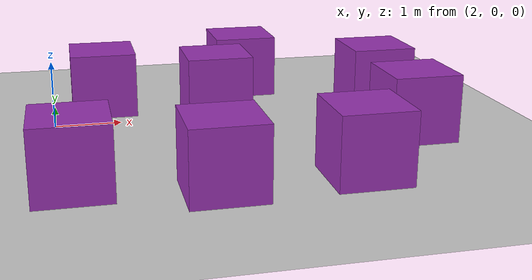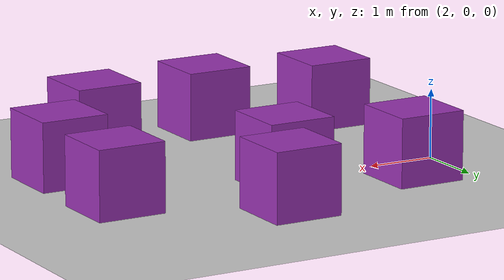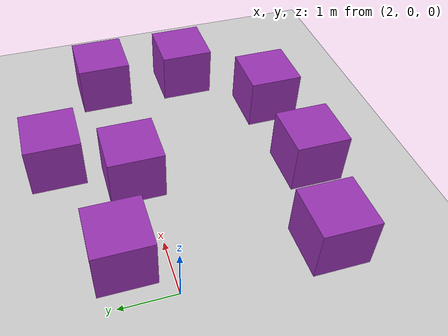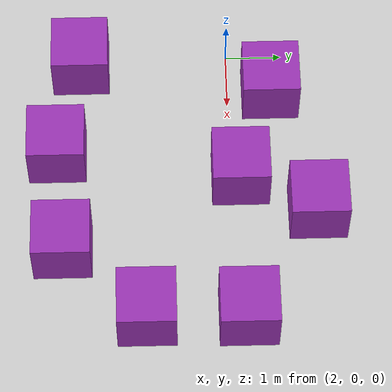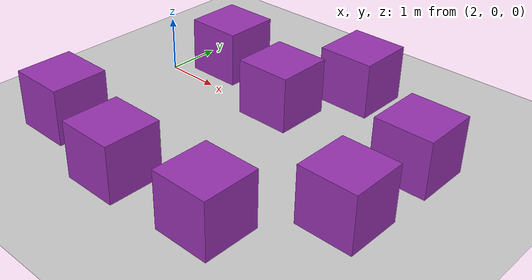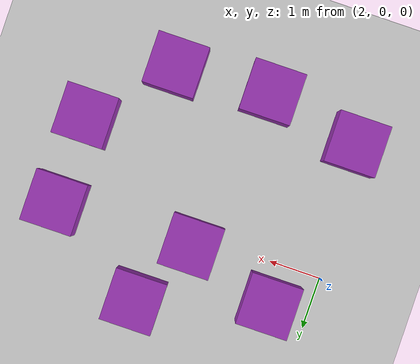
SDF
<sdf version="1.6">
 <world name="default">
  <light name="sun" type="directional">
   <pose>0 0 10 0 -0 0</pose>
   <diffuse>0.8 0.8 0.8 1</diffuse>
   <specular>0.1 0.1 0.1 1</specular>
   <attenuation>
    <range>1000</range>
    <constant>0.9</constant>
    <linear>0.01</linear>
    <quadratic>0.001</quadratic>
   </attenuation>
   <direction>-0.5 0.5 -1</direction>
  </light>
  <model name="ground_plane">
   <static>1</static>
   <link name="link">
    <collision name="collision">
     <geometry><plane><normal>0 0 1</normal><size>100 100</size></plane></geometry>
     <surface><friction><ode><mu>100</mu><mu2>50</mu2></ode></friction></surface>
    </collision>
    <visual name="visual">
     <cast_shadows>0</cast_shadows>
     <geometry><plane><normal>0 0 1</normal><size>100 100</size></plane></geometry>
     <material>
      <script><uri>file://media/materials/scripts/gazebo.material</uri><name>Gazebo/Grey</name></script>
     </material>
    </visual>
   </link>
  </model>
  <gravity>0 0 -9.8</gravity>
  <magnetic_field>6e-06 2.3e-05 -4.2e-05</magnetic_field>
  <atmosphere type="adiabatic"/>
  <physics name="default_physics" default="0" type="ode">
   <max_step_size>0.001</max_step_size>
   <real_time_factor>1</real_time_factor>
   <real_time_update_rate>1000</real_time_update_rate>
  </physics>
  <scene><ambient>0.4 0.4 0.4 1</ambient><background>0.7 0.7 0.7 1</background><shadows>1</shadows></scene>
  <spherical_coordinates>
   <surface_model>EARTH_WGS84</surface_model>
   <latitude_deg>0</latitude_deg>
   <longitude_deg>0</longitude_deg>
   <elevation>0</elevation>
   <heading_deg>0</heading_deg>
  </spherical_coordinates>
  <model name="unit_box_0">
   <pose>2.78087 0.763074 0.499995 -1e-05 0 0</pose>
   <link name="link">
    <inertial>
     <mass>1</mass>
     <inertia>
      <ixx>0.166667</ixx>
      <ixy>0</ixy>
      <ixz>0</ixz>
      <iyy>0.166667</iyy>
      <iyz>0</iyz>
      <izz>0.166667</izz>
     </inertia>
    </inertial>
    <collision name="collision"><geometry><box><size>1 1 1</size></box></geometry></collision>
    <visual name="visual">
     <geometry><box><size>1 1 1</size></box></geometry>
     <material>
      <script><name>Gazebo/Purple</name><uri>file://media/materials/scripts/gazebo.material</uri></script>
     </material>
    </visual>
   </link>
  </model>
  <model name="unit_box_1">
   <pose>2.20531 -2.617 0.499995 0 1e-05 0</pose>
   <link name="link">
    <inertial>
     <mass>1</mass>
     <inertia>
      <ixx>0.166667</ixx>
      <ixy>0</ixy>
      <ixz>0</ixz>
      <iyy>0.166667</iyy>
      <iyz>0</iyz>
      <izz>0.166667</izz>
     </inertia>
    </inertial>
    <collision name="collision"><geometry><box><size>1 1 1</size></box></geometry></collision>
    <visual name="visual">
     <geometry><box><size>1 1 1</size></box></geometry>
     <material>
      <script><name>Gazebo/Purple</name><uri>file://media/materials/scripts/gazebo.material</uri></script>
     </material>
    </visual>
   </link>
  </model>
  <model name="unit_box_2">
   <pose>4.00769 -3.02599 0.499995 -1e-05 0 0</pose>
   <link name="link">
    <inertial>
     <mass>1</mass>
     <inertia>
      <ixx>0.166667</ixx>
      <ixy>0</ixy>
      <ixz>0</ixz>
      <iyy>0.166667</iyy>
      <iyz>0</iyz>
      <izz>0.166667</izz>
     </inertia>
    </inertial>
    <collision name="collision"><geometry><box><size>1 1 1</size></box></geometry></collision>
    <visual name="visual">
     <geometry><box><size>1 1 1</size></box></geometry>
     <material>
      <script><name>Gazebo/Purple</name><uri>file://media/materials/scripts/gazebo.material</uri></script>
     </material>
    </visual>
   </link>
  </model>
  <model name="unit_box_3">
   <pose>4.51821 0.177146 0.499995 0 1e-05 0</pose>
   <link name="link">
    <inertial>
     <mass>1</mass>
     <inertia>
      <ixx>0.166667</ixx>
      <ixy>0</ixy>
      <ixz>0</ixz>
      <iyy>0.166667</iyy>
      <iyz>0</iyz>
      <izz>0.166667</izz>
     </inertia>
    </inertial>
    <collision name="collision"><geometry><box><size>1 1 1</size></box></geometry></collision>
    <visual name="visual">
     <geometry><box><size>1 1 1</size></box></geometry>
     <material>
      <script><name>Gazebo/Purple</name><uri>file://media/materials/scripts/gazebo.material</uri></script>
     </material>
    </visual>
   </link>
  </model>
  <model name="unit_box_4">
   <pose>5.87224 -2.92035 0.499995 -1e-05 0 0</pose>
   <link name="link">
    <inertial>
     <mass>1</mass>
     <inertia>
      <ixx>0.166667</ixx>
      <ixy>0</ixy>
      <ixz>0</ixz>
      <iyy>0.166667</iyy>
      <iyz>0</iyz>
      <izz>0.166667</izz>
     </inertia>
    </inertial>
    <collision name="collision"><geometry><box><size>1 1 1</size></box></geometry></collision>
    <visual name="visual">
     <geometry><box><size>1 1 1</size></box></geometry>
     <material>
      <script><name>Gazebo/Purple</name><uri>file://media/materials/scripts/gazebo.material</uri></script>
     </material>
    </visual>
   </link>
  </model>
  <model name="unit_box_5">
   <pose>7.16347 -1.4887 0.499995 0 1e-05 0</pose>
   <link name="link">
    <inertial>
     <mass>1</mass>
     <inertia>
      <ixx>0.166667</ixx>
      <ixy>0</ixy>
      <ixz>0</ixz>
      <iyy>0.166667</iyy>
      <iyz>0</iyz>
      <izz>0.166667</izz>
     </inertia>
    </inertial>
    <collision name="collision"><geometry><box><size>1 1 1</size></box></geometry></collision>
    <visual name="visual">
     <geometry><box><size>1 1 1</size></box></geometry>
     <material>
      <script><name>Gazebo/Purple</name><uri>file://media/materials/scripts/gazebo.material</uri></script>
     </material>
    </visual>
   </link>
  </model>
  <model name="unit_box_6">
   <pose>7.19092 0.226098 0.499995 -1e-05 0 0</pose>
   <link name="link">
    <inertial>
     <mass>1</mass>
     <inertia>
      <ixx>0.166667</ixx>
      <ixy>0</ixy>
      <ixz>0</ixz>
      <iyy>0.166667</iyy>
      <iyz>0</iyz>
      <izz>0.166667</izz>
     </inertia>
    </inertial>
    <collision name="collision"><geometry><box><size>1 1 1</size></box></geometry></collision>
    <visual name="visual">
     <geometry><box><size>1 1 1</size></box></geometry>
     <material>
      <script><name>Gazebo/Purple</name><uri>file://media/materials/scripts/gazebo.material</uri></script>
     </material>
    </visual>
   </link>
  </model>
  <model name="unit_box_7">
   <pose>5.20179 1.49784 0.5 0 -0 0</pose>
   <link name="link">
    <inertial>
     <mass>1</mass>
     <inertia>
      <ixx>0.166667</ixx>
      <ixy>0</ixy>
      <ixz>0</ixz>
      <iyy>0.166667</iyy>
      <iyz>0</iyz>
      <izz>0.166667</izz>
     </inertia>
    </inertial>
    <collision name="collision"><geometry><box><size>1 1 1</size></box></geometry></collision>
    <visual name="visual">
     <geometry><box><size>1 1 1</size></box></geometry>
     <material>
      <script><name>Gazebo/Purple</name><uri>file://media/materials/scripts/gazebo.material</uri></script>
     </material>
    </visual>
   </link>
  </model>
 </world>
</sdf>
